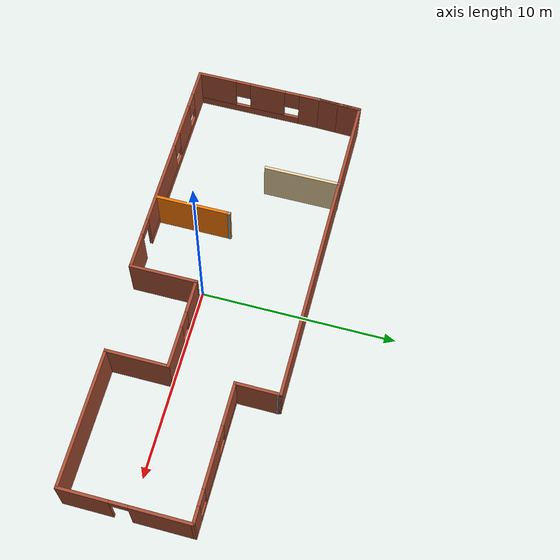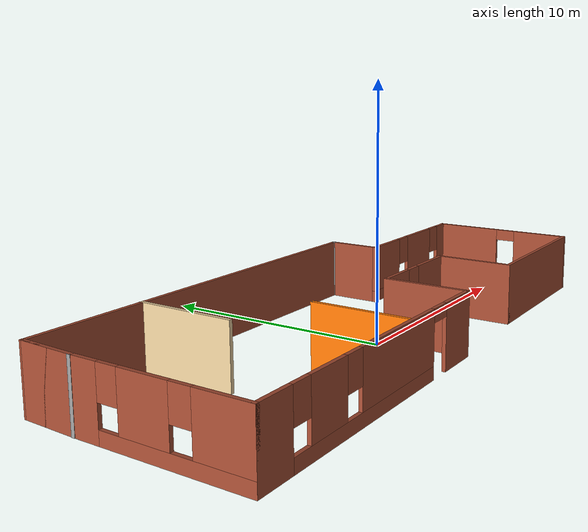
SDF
<?xml version='1.0'?>
<sdf version='1.6'>
  <model name='my_office'>
    <pose frame=''>0.229146 0.987784 0 0 -0 0</pose>
    <link name='Wall_0'>
      <collision name='Wall_0_Collision'>
        <geometry>
          <box>
            <size>0.16 0.15 2.5</size>
          </box>
        </geometry>
        <pose frame=''>0 0 1.25 0 -0 0</pose>
      </collision>
      <visual name='Wall_0_Visual'>
        <pose frame=''>0 0 1.25 0 -0 0</pose>
        <geometry>
          <box>
            <size>0.16 0.15 2.5</size>
          </box>
        </geometry>
        <material>
          <script>
            <uri>file://media/materials/scripts/gazebo.material</uri>
            <name>Gazebo/Grey</name>
          </script>
          <ambient>1 1 1 1</ambient>
        </material>
        <meta>
          <layer>0</layer>
        </meta>
      </visual>
      <pose frame=''>-11.775 2.1925 0 0 -0 0</pose>
    </link>
    <link name='Wall_1'>
      <pose frame=''>-11.77 -1.1075 0 0 0 -1.5708</pose>
      <visual name='Wall_1_Visual_0'>
        <pose frame=''>-2.79916 0 1.25 0 -0 0</pose>
        <geometry>
          <box>
            <size>1.15167 0.15 2.5</size>
          </box>
        </geometry>
        <material>
          <script>
            <uri>file://media/materials/scripts/gazebo.material</uri>
            <name>Gazebo/Bricks</name>
          </script>
          <ambient>1 1 1 1</ambient>
        </material>
        <meta>
          <layer>0</layer>
        </meta>
      </visual>
      <collision name='Wall_1_Collision_0'>
        <geometry>
          <box>
            <size>1.15167 0.15 2.5</size>
          </box>
        </geometry>
        <pose frame=''>-2.79916 0 1.25 0 -0 0</pose>
      </collision>
      <visual name='Wall_1_Visual_1'>
        <pose frame=''>0.575835 0 0.25 0 -0 0</pose>
        <geometry>
          <box>
            <size>5.59833 0.15 0.5</size>
          </box>
        </geometry>
        <material>
          <script>
            <uri>file://media/materials/scripts/gazebo.material</uri>
            <name>Gazebo/Bricks</name>
          </script>
          <ambient>1 1 1 1</ambient>
        </material>
        <meta>
          <layer>0</layer>
        </meta>
      </visual>
      <collision name='Wall_1_Collision_1'>
        <geometry>
          <box>
            <size>5.59833 0.15 0.5</size>
          </box>
        </geometry>
        <pose frame=''>0.575835 0 0.25 0 -0 0</pose>
      </collision>
      <visual name='Wall_1_Visual_2'>
        <pose frame=''>-0.469718 0 1.5 0 -0 0</pose>
        <geometry>
          <box>
            <size>1.90723 0.15 2</size>
          </box>
        </geometry>
        <material>
          <script>
            <uri>file://media/materials/scripts/gazebo.material</uri>
            <name>Gazebo/Bricks</name>
          </script>
          <ambient>1 1 1 1</ambient>
        </material>
        <meta>
          <layer>0</layer>
        </meta>
      </visual>
      <collision name='Wall_1_Collision_2'>
        <geometry>
          <box>
            <size>1.90723 0.15 2</size>
          </box>
        </geometry>
        <pose frame=''>-0.469718 0 1.5 0 -0 0</pose>
      </collision>
      <visual name='Wall_1_Visual_3'>
        <pose frame=''>2.32945 0 1.5 0 -0 0</pose>
        <geometry>
          <box>
            <size>2.0911 0.15 2</size>
          </box>
        </geometry>
        <material>
          <script>
            <uri>file://media/materials/scripts/gazebo.material</uri>
            <name>Gazebo/Bricks</name>
          </script>
          <ambient>1 1 1 1</ambient>
        </material>
        <meta>
          <layer>0</layer>
        </meta>
      </visual>
      <collision name='Wall_1_Collision_3'>
        <geometry>
          <box>
            <size>2.0911 0.15 2</size>
          </box>
        </geometry>
        <pose frame=''>2.32945 0 1.5 0 -0 0</pose>
      </collision>
      <visual name='Wall_1_Visual_4'>
        <pose frame=''>-1.82333 0 1.9 0 -0 0</pose>
        <geometry>
          <box>
            <size>0.8 0.15 1.2</size>
          </box>
        </geometry>
        <material>
          <script>
            <uri>file://media/materials/scripts/gazebo.material</uri>
            <name>Gazebo/Bricks</name>
          </script>
          <ambient>1 1 1 1</ambient>
        </material>
        <meta>
          <layer>0</layer>
        </meta>
      </visual>
      <collision name='Wall_1_Collision_4'>
        <geometry>
          <box>
            <size>0.8 0.15 1.2</size>
          </box>
        </geometry>
        <pose frame=''>-1.82333 0 1.9 0 -0 0</pose>
      </collision>
      <visual name='Wall_1_Visual_5'>
        <pose frame=''>0.883896 0 1.9 0 -0 0</pose>
        <geometry>
          <box>
            <size>0.8 0.15 1.2</size>
          </box>
        </geometry>
        <material>
          <script>
            <uri>file://media/materials/scripts/gazebo.material</uri>
            <name>Gazebo/Bricks</name>
          </script>
          <ambient>1 1 1 1</ambient>
        </material>
        <meta>
          <layer>0</layer>
        </meta>
      </visual>
      <collision name='Wall_1_Collision_5'>
        <geometry>
          <box>
            <size>0.8 0.15 1.2</size>
          </box>
        </geometry>
        <pose frame=''>0.883896 0 1.9 0 -0 0</pose>
      </collision>
    </link>
    <link name='Wall_11'>
      <collision name='Wall_11_Collision'>
        <geometry>
          <box>
            <size>0.25 0.15 2.5</size>
          </box>
        </geometry>
        <pose frame=''>0 0 1.25 0 -0 0</pose>
      </collision>
      <visual name='Wall_11_Visual'>
        <pose frame=''>0 0 1.25 0 -0 0</pose>
        <geometry>
          <box>
            <size>0.25 0.15 2.5</size>
          </box>
        </geometry>
        <material>
          <script>
            <uri>file://media/materials/scripts/gazebo.material</uri>
            <name>Gazebo/Grey</name>
          </script>
          <ambient>1 1 1 1</ambient>
        </material>
        <meta>
          <layer>0</layer>
        </meta>
      </visual>
      <pose frame=''>4.91706 4.34079 0 0 -0 1.8326</pose>
    </link>
    <link name='Wall_12'>
      <collision name='Wall_12_Collision'>
        <geometry>
          <box>
            <size>16.75 0.15 2.5</size>
          </box>
        </geometry>
        <pose frame=''>0 0 1.25 0 -0 0</pose>
      </collision>
      <visual name='Wall_12_Visual'>
        <pose frame=''>0 0 1.25 0 -0 0</pose>
        <geometry>
          <box>
            <size>16.75 0.15 2.5</size>
          </box>
        </geometry>
        <material>
          <script>
            <uri>file://media/materials/scripts/gazebo.material</uri>
            <name>Gazebo/Bricks</name>
          </script>
          <ambient>1 1 1 1</ambient>
        </material>
        <meta>
          <layer>0</layer>
        </meta>
      </visual>
      <pose frame=''>-3.39588 4.38909 0 0 -0 3.14159</pose>
    </link>
    <link name='Wall_13'>
      <collision name='Wall_13_Collision'>
        <geometry>
          <box>
            <size>2.34784 0.15 2.5</size>
          </box>
        </geometry>
        <pose frame=''>0 0 1.25 0 -0 0</pose>
      </collision>
      <visual name='Wall_13_Visual'>
        <pose frame=''>0 0 1.25 0 -0 0</pose>
        <geometry>
          <box>
            <size>2.34784 0.15 2.5</size>
          </box>
        </geometry>
        <material>
          <script>
            <uri>file://media/materials/scripts/gazebo.material</uri>
            <name>Gazebo/Bricks</name>
          </script>
          <ambient>1 1 1 1</ambient>
        </material>
        <meta>
          <layer>0</layer>
        </meta>
      </visual>
      <pose frame=''>-11.7329 3.2908 0 0 0 -1.60453</pose>
    </link>
    <link name='Wall_14'>
      <collision name='Wall_14_Collision'>
        <geometry>
          <box>
            <size>2.34784 0.15 2.5</size>
          </box>
        </geometry>
        <pose frame=''>0 0 1.25 0 -0 0</pose>
      </collision>
      <visual name='Wall_14_Visual'>
        <pose frame=''>0 0 1.25 0 -0 0</pose>
        <geometry>
          <box>
            <size>2.34784 0.15 2.5</size>
          </box>
        </geometry>
        <material>
          <script>
            <uri>file://media/materials/scripts/gazebo.material</uri>
            <name>Gazebo/Bricks</name>
          </script>
          <ambient>1 1 1 1</ambient>
        </material>
        <meta>
          <layer>0</layer>
        </meta>
      </visual>
      <pose frame=''>-11.7329 3.2908 0 0 -0 1.53707</pose>
    </link>
    <link name='Wall_16'>
      <collision name='Wall_16_Collision'>
        <geometry>
          <box>
            <size>0.16 0.15 2.5</size>
          </box>
        </geometry>
        <pose frame=''>0 0 1.25 0 -0 0</pose>
      </collision>
      <visual name='Wall_16_Visual'>
        <pose frame=''>0 0 1.25 0 -0 0</pose>
        <geometry>
          <box>
            <size>0.16 0.15 2.5</size>
          </box>
        </geometry>
        <material>
          <script>
            <uri>file://media/materials/scripts/gazebo.material</uri>
            <name>Gazebo/Grey</name>
          </script>
          <ambient>1 1 1 1</ambient>
        </material>
        <meta>
          <layer>0</layer>
        </meta>
      </visual>
      <pose frame=''>-6.9143 4.4075 0 0 -0 0</pose>
    </link>
    <link name='Wall_17'>
      <collision name='Wall_17_Collision'>
        <geometry>
          <box>
            <size>4 0.15 2.5</size>
          </box>
        </geometry>
        <pose frame=''>0 0 1.25 0 -0 0</pose>
      </collision>
      <visual name='Wall_17_Visual'>
        <pose frame=''>0 0 1.25 0 -0 0</pose>
        <geometry>
          <box>
            <size>4 0.15 2.5</size>
          </box>
        </geometry>
        <material>
          <script>
            <uri>file://media/materials/scripts/gazebo.material</uri>
            <name>Gazebo/Grey</name>
          </script>
          <ambient>0.921569 0.807843 0.615686 1</ambient>
        </material>
        <meta>
          <layer>0</layer>
        </meta>
      </visual>
      <pose frame=''>-6.9093 2.4825 0 0 0 -1.5708</pose>
    </link>
    <link name='Wall_19'>
      <collision name='Wall_19_Collision'>
        <geometry>
          <box>
            <size>4 0.15 2.5</size>
          </box>
        </geometry>
        <pose frame=''>0 0 1.25 0 -0 0</pose>
      </collision>
      <visual name='Wall_19_Visual'>
        <pose frame=''>0 0 1.25 0 -0 0</pose>
        <geometry>
          <box>
            <size>4 0.15 2.5</size>
          </box>
        </geometry>
        <material>
          <script>
            <uri>file://media/materials/scripts/gazebo.material</uri>
            <name>Gazebo/Grey</name>
          </script>
          <ambient>0.996078 0.47451 0.0196078 1</ambient>
        </material>
        <meta>
          <layer>0</layer>
        </meta>
      </visual>
      <pose frame=''>-3.78138 -2.46598 0 0 -0 1.5708</pose>
    </link>
    <link name='Wall_2'>
      <pose frame=''>-5.72 -4.4075 0 0 -0 0</pose>
      <visual name='Wall_2_Visual_0'>
        <pose frame=''>-5.36958 0 1.25 0 -0 0</pose>
        <geometry>
          <box>
            <size>1.51084 0.15 2.5</size>
          </box>
        </geometry>
        <material>
          <script>
            <uri>file://media/materials/scripts/gazebo.material</uri>
            <name>Gazebo/Bricks</name>
          </script>
          <ambient>1 1 1 1</ambient>
        </material>
        <meta>
          <layer>0</layer>
        </meta>
      </visual>
      <collision name='Wall_2_Collision_0'>
        <geometry>
          <box>
            <size>1.51084 0.15 2.5</size>
          </box>
        </geometry>
        <pose frame=''>-5.36958 0 1.25 0 -0 0</pose>
      </collision>
      <visual name='Wall_2_Visual_1'>
        <pose frame=''>5.17973 0 1.25 0 -0 0</pose>
        <geometry>
          <box>
            <size>1.89054 0.15 2.5</size>
          </box>
        </geometry>
        <material>
          <script>
            <uri>file://media/materials/scripts/gazebo.material</uri>
            <name>Gazebo/Bricks</name>
          </script>
          <ambient>1 1 1 1</ambient>
        </material>
        <meta>
          <layer>0</layer>
        </meta>
      </visual>
      <collision name='Wall_2_Collision_1'>
        <geometry>
          <box>
            <size>1.89054 0.15 2.5</size>
          </box>
        </geometry>
        <pose frame=''>5.17973 0 1.25 0 -0 0</pose>
      </collision>
      <visual name='Wall_2_Visual_2'>
        <pose frame=''>-0.639852 0 0.25 0 -0 0</pose>
        <geometry>
          <box>
            <size>7.94862 0.15 0.5</size>
          </box>
        </geometry>
        <material>
          <script>
            <uri>file://media/materials/scripts/gazebo.material</uri>
            <name>Gazebo/Bricks</name>
          </script>
          <ambient>1 1 1 1</ambient>
        </material>
        <meta>
          <layer>0</layer>
        </meta>
      </visual>
      <collision name='Wall_2_Collision_2'>
        <geometry>
          <box>
            <size>7.94862 0.15 0.5</size>
          </box>
        </geometry>
        <pose frame=''>-0.639852 0 0.25 0 -0 0</pose>
      </collision>
      <visual name='Wall_2_Visual_3'>
        <pose frame=''>-2.92208 0 1.5 0 -0 0</pose>
        <geometry>
          <box>
            <size>1.78417 0.15 2</size>
          </box>
        </geometry>
        <material>
          <script>
            <uri>file://media/materials/scripts/gazebo.material</uri>
            <name>Gazebo/Bricks</name>
          </script>
          <ambient>1 1 1 1</ambient>
        </material>
        <meta>
          <layer>0</layer>
        </meta>
      </visual>
      <collision name='Wall_2_Collision_3'>
        <geometry>
          <box>
            <size>1.78417 0.15 2</size>
          </box>
        </geometry>
        <pose frame=''>-2.92208 0 1.5 0 -0 0</pose>
      </collision>
      <visual name='Wall_2_Visual_4'>
        <pose frame=''>1.05223 0 1.5 0 -0 0</pose>
        <geometry>
          <box>
            <size>4.56445 0.15 2</size>
          </box>
        </geometry>
        <material>
          <script>
            <uri>file://media/materials/scripts/gazebo.material</uri>
            <name>Gazebo/Bricks</name>
          </script>
          <ambient>1 1 1 1</ambient>
        </material>
        <meta>
          <layer>0</layer>
        </meta>
      </visual>
      <collision name='Wall_2_Collision_4'>
        <geometry>
          <box>
            <size>4.56445 0.15 2</size>
          </box>
        </geometry>
        <pose frame=''>1.05223 0 1.5 0 -0 0</pose>
      </collision>
      <visual name='Wall_2_Visual_5'>
        <pose frame=''>-4.21416 0 1.9 0 -0 0</pose>
        <geometry>
          <box>
            <size>0.8 0.15 1.2</size>
          </box>
        </geometry>
        <material>
          <script>
            <uri>file://media/materials/scripts/gazebo.material</uri>
            <name>Gazebo/Bricks</name>
          </script>
          <ambient>1 1 1 1</ambient>
        </material>
        <meta>
          <layer>0</layer>
        </meta>
      </visual>
      <collision name='Wall_2_Collision_5'>
        <geometry>
          <box>
            <size>0.8 0.15 1.2</size>
          </box>
        </geometry>
        <pose frame=''>-4.21416 0 1.9 0 -0 0</pose>
      </collision>
      <visual name='Wall_2_Visual_6'>
        <pose frame=''>-1.62999 0 1.9 0 -0 0</pose>
        <geometry>
          <box>
            <size>0.8 0.15 1.2</size>
          </box>
        </geometry>
        <material>
          <script>
            <uri>file://media/materials/scripts/gazebo.material</uri>
            <name>Gazebo/Bricks</name>
          </script>
          <ambient>1 1 1 1</ambient>
        </material>
        <meta>
          <layer>0</layer>
        </meta>
      </visual>
      <collision name='Wall_2_Collision_6'>
        <geometry>
          <box>
            <size>0.8 0.15 1.2</size>
          </box>
        </geometry>
        <pose frame=''>-1.62999 0 1.9 0 -0 0</pose>
      </collision>
      <visual name='Wall_2_Visual_7'>
        <pose frame=''>3.78446 0 2.25 0 -0 0</pose>
        <geometry>
          <box>
            <size>0.9 0.15 0.5</size>
          </box>
        </geometry>
        <material>
          <script>
            <uri>file://media/materials/scripts/gazebo.material</uri>
            <name>Gazebo/Bricks</name>
          </script>
          <ambient>1 1 1 1</ambient>
        </material>
        <meta>
          <layer>0</layer>
        </meta>
      </visual>
      <collision name='Wall_2_Collision_7'>
        <geometry>
          <box>
            <size>0.9 0.15 0.5</size>
          </box>
        </geometry>
        <pose frame=''>3.78446 0 2.25 0 -0 0</pose>
      </collision>
    </link>
    <link name='Wall_20'>
      <collision name='Wall_20_Collision'>
        <geometry>
          <box>
            <size>0.16 0.15 2.5</size>
          </box>
        </geometry>
        <pose frame=''>0 0 1.25 0 -0 0</pose>
      </collision>
      <visual name='Wall_20_Visual'>
        <pose frame=''>0 0 1.25 0 -0 0</pose>
        <geometry>
          <box>
            <size>0.16 0.15 2.5</size>
          </box>
        </geometry>
        <material>
          <script>
            <uri>file://media/materials/scripts/gazebo.material</uri>
            <name>Gazebo/Grey</name>
          </script>
          <ambient>1 1 1 1</ambient>
        </material>
        <meta>
          <layer>0</layer>
        </meta>
      </visual>
      <pose frame=''>-3.77638 -0.540985 0 0 -0 0</pose>
    </link>
    <link name='Wall_3'>
      <collision name='Wall_3_Collision'>
        <geometry>
          <box>
            <size>3.5 0.15 2.5</size>
          </box>
        </geometry>
        <pose frame=''>0 0 1.25 0 -0 0</pose>
      </collision>
      <visual name='Wall_3_Visual'>
        <pose frame=''>0 0 1.25 0 -0 0</pose>
        <geometry>
          <box>
            <size>3.5 0.15 2.5</size>
          </box>
        </geometry>
        <material>
          <script>
            <uri>file://media/materials/scripts/gazebo.material</uri>
            <name>Gazebo/Bricks</name>
          </script>
          <ambient>1 1 1 1</ambient>
        </material>
        <meta>
          <layer>0</layer>
        </meta>
      </visual>
      <pose frame=''>0.33 -2.7325 0 0 -0 1.5708</pose>
    </link>
    <link name='Wall_4'>
      <pose frame=''>2.63 -1.0575 0 0 -0 0</pose>
      <visual name='Wall_4_Visual_0'>
        <pose frame=''>-1.48603 0 1.25 0 -0 0</pose>
        <geometry>
          <box>
            <size>1.77794 0.15 2.5</size>
          </box>
        </geometry>
        <material>
          <script>
            <uri>file://media/materials/scripts/gazebo.material</uri>
            <name>Gazebo/Bricks</name>
          </script>
          <ambient>1 1 1 1</ambient>
        </material>
        <meta>
          <layer>0</layer>
        </meta>
      </visual>
      <collision name='Wall_4_Collision_0'>
        <geometry>
          <box>
            <size>1.77794 0.15 2.5</size>
          </box>
        </geometry>
        <pose frame=''>-1.48603 0 1.25 0 -0 0</pose>
      </collision>
      <visual name='Wall_4_Visual_1'>
        <pose frame=''>0.88897 0 0.25 0 -0 0</pose>
        <geometry>
          <box>
            <size>2.97206 0.15 0.5</size>
          </box>
        </geometry>
        <material>
          <script>
            <uri>file://media/materials/scripts/gazebo.material</uri>
            <name>Gazebo/Bricks</name>
          </script>
          <ambient>1 1 1 1</ambient>
        </material>
        <meta>
          <layer>0</layer>
        </meta>
      </visual>
      <collision name='Wall_4_Collision_1'>
        <geometry>
          <box>
            <size>2.97206 0.15 0.5</size>
          </box>
        </geometry>
        <pose frame=''>0.88897 0 0.25 0 -0 0</pose>
      </collision>
      <visual name='Wall_4_Visual_2'>
        <pose frame=''>1.28897 0 1.5 0 -0 0</pose>
        <geometry>
          <box>
            <size>2.17206 0.15 2</size>
          </box>
        </geometry>
        <material>
          <script>
            <uri>file://media/materials/scripts/gazebo.material</uri>
            <name>Gazebo/Bricks</name>
          </script>
          <ambient>1 1 1 1</ambient>
        </material>
        <meta>
          <layer>0</layer>
        </meta>
      </visual>
      <collision name='Wall_4_Collision_2'>
        <geometry>
          <box>
            <size>2.17206 0.15 2</size>
          </box>
        </geometry>
        <pose frame=''>1.28897 0 1.5 0 -0 0</pose>
      </collision>
      <visual name='Wall_4_Visual_3'>
        <pose frame=''>-0.197061 0 1.9 0 -0 0</pose>
        <geometry>
          <box>
            <size>0.8 0.15 1.2</size>
          </box>
        </geometry>
        <material>
          <script>
            <uri>file://media/materials/scripts/gazebo.material</uri>
            <name>Gazebo/Bricks</name>
          </script>
          <ambient>1 1 1 1</ambient>
        </material>
        <meta>
          <layer>0</layer>
        </meta>
      </visual>
      <collision name='Wall_4_Collision_3'>
        <geometry>
          <box>
            <size>0.8 0.15 1.2</size>
          </box>
        </geometry>
        <pose frame=''>-0.197061 0 1.9 0 -0 0</pose>
      </collision>
    </link>
    <link name='Wall_5'>
      <collision name='Wall_5_Collision'>
        <geometry>
          <box>
            <size>3.25 0.15 2.5</size>
          </box>
        </geometry>
        <pose frame=''>0 0 1.25 0 -0 0</pose>
      </collision>
      <visual name='Wall_5_Visual'>
        <pose frame=''>0 0 1.25 0 -0 0</pose>
        <geometry>
          <box>
            <size>3.25 0.15 2.5</size>
          </box>
        </geometry>
        <material>
          <script>
            <uri>file://media/materials/scripts/gazebo.material</uri>
            <name>Gazebo/Bricks</name>
          </script>
          <ambient>1 1 1 1</ambient>
        </material>
        <meta>
          <layer>0</layer>
        </meta>
      </visual>
      <pose frame=''>4.93 -2.6075 0 0 0 -1.5708</pose>
    </link>
    <link name='Wall_6'>
      <collision name='Wall_6_Collision'>
        <geometry>
          <box>
            <size>7 0.15 2.5</size>
          </box>
        </geometry>
        <pose frame=''>0 0 1.25 0 -0 0</pose>
      </collision>
      <visual name='Wall_6_Visual'>
        <pose frame=''>0 0 1.25 0 -0 0</pose>
        <geometry>
          <box>
            <size>7 0.15 2.5</size>
          </box>
        </geometry>
        <material>
          <script>
            <uri>file://media/materials/scripts/gazebo.material</uri>
            <name>Gazebo/Bricks</name>
          </script>
          <ambient>1 1 1 1</ambient>
        </material>
        <meta>
          <layer>0</layer>
        </meta>
      </visual>
      <pose frame=''>8.355 -4.1575 0 0 -0 0</pose>
    </link>
    <link name='Wall_7'>
      <pose frame=''>11.78 -0.982502 0 0 -0 1.5708</pose>
      <visual name='Wall_7_Visual_0'>
        <pose frame=''>-1.98528 0 1.25 0 -0 0</pose>
        <geometry>
          <box>
            <size>2.52944 0.15 2.5</size>
          </box>
        </geometry>
        <material>
          <script>
            <uri>file://media/materials/scripts/gazebo.material</uri>
            <name>Gazebo/Bricks</name>
          </script>
          <ambient>1 1 1 1</ambient>
        </material>
        <meta>
          <layer>0</layer>
        </meta>
      </visual>
      <collision name='Wall_7_Collision_0'>
        <geometry>
          <box>
            <size>2.52944 0.15 2.5</size>
          </box>
        </geometry>
        <pose frame=''>-1.98528 0 1.25 0 -0 0</pose>
      </collision>
      <visual name='Wall_7_Visual_1'>
        <pose frame=''>1.71472 0 1.25 0 -0 0</pose>
        <geometry>
          <box>
            <size>3.07056 0.15 2.5</size>
          </box>
        </geometry>
        <material>
          <script>
            <uri>file://media/materials/scripts/gazebo.material</uri>
            <name>Gazebo/Bricks</name>
          </script>
          <ambient>1 1 1 1</ambient>
        </material>
        <meta>
          <layer>0</layer>
        </meta>
      </visual>
      <collision name='Wall_7_Collision_1'>
        <geometry>
          <box>
            <size>3.07056 0.15 2.5</size>
          </box>
        </geometry>
        <pose frame=''>1.71472 0 1.25 0 -0 0</pose>
      </collision>
      <visual name='Wall_7_Visual_2'>
        <pose frame=''>-0.270561 0 2.25 0 -0 0</pose>
        <geometry>
          <box>
            <size>0.9 0.15 0.5</size>
          </box>
        </geometry>
        <material>
          <script>
            <uri>file://media/materials/scripts/gazebo.material</uri>
            <name>Gazebo/Bricks</name>
          </script>
          <ambient>1 1 1 1</ambient>
        </material>
        <meta>
          <layer>0</layer>
        </meta>
      </visual>
      <collision name='Wall_7_Collision_2'>
        <geometry>
          <box>
            <size>0.9 0.15 0.5</size>
          </box>
        </geometry>
        <pose frame=''>-0.270561 0 2.25 0 -0 0</pose>
      </collision>
    </link>
    <link name='Wall_8'>
      <pose frame=''>8.355 2.1925 0 0 -0 3.14159</pose>
      <visual name='Wall_8_Visual_0'>
        <pose frame=''>-3.04981 0 1.25 0 -0 0</pose>
        <geometry>
          <box>
            <size>0.900381 0.15 2.5</size>
          </box>
        </geometry>
        <material>
          <script>
            <uri>file://media/materials/scripts/gazebo.material</uri>
            <name>Gazebo/Bricks</name>
          </script>
          <ambient>1 1 1 1</ambient>
        </material>
        <meta>
          <layer>0</layer>
        </meta>
      </visual>
      <collision name='Wall_8_Collision_0'>
        <geometry>
          <box>
            <size>0.900381 0.15 2.5</size>
          </box>
        </geometry>
        <pose frame=''>-3.04981 0 1.25 0 -0 0</pose>
      </collision>
      <visual name='Wall_8_Visual_1'>
        <pose frame=''>0.45019 0 0.25 0 -0 0</pose>
        <geometry>
          <box>
            <size>6.09962 0.15 0.5</size>
          </box>
        </geometry>
        <material>
          <script>
            <uri>file://media/materials/scripts/gazebo.material</uri>
            <name>Gazebo/Bricks</name>
          </script>
          <ambient>1 1 1 1</ambient>
        </material>
        <meta>
          <layer>0</layer>
        </meta>
      </visual>
      <collision name='Wall_8_Collision_1'>
        <geometry>
          <box>
            <size>6.09962 0.15 0.5</size>
          </box>
        </geometry>
        <pose frame=''>0.45019 0 0.25 0 -0 0</pose>
      </collision>
      <visual name='Wall_8_Visual_2'>
        <pose frame=''>-0.661422 0 1.5 0 -0 0</pose>
        <geometry>
          <box>
            <size>2.27639 0.15 2</size>
          </box>
        </geometry>
        <material>
          <script>
            <uri>file://media/materials/scripts/gazebo.material</uri>
            <name>Gazebo/Bricks</name>
          </script>
          <ambient>1 1 1 1</ambient>
        </material>
        <meta>
          <layer>0</layer>
        </meta>
      </visual>
      <collision name='Wall_8_Collision_2'>
        <geometry>
          <box>
            <size>2.27639 0.15 2</size>
          </box>
        </geometry>
        <pose frame=''>-0.661422 0 1.5 0 -0 0</pose>
      </collision>
      <visual name='Wall_8_Visual_3'>
        <pose frame=''>2.38839 0 1.5 0 -0 0</pose>
        <geometry>
          <box>
            <size>2.22323 0.15 2</size>
          </box>
        </geometry>
        <material>
          <script>
            <uri>file://media/materials/scripts/gazebo.material</uri>
            <name>Gazebo/Bricks</name>
          </script>
          <ambient>1 1 1 1</ambient>
        </material>
        <meta>
          <layer>0</layer>
        </meta>
      </visual>
      <collision name='Wall_8_Collision_3'>
        <geometry>
          <box>
            <size>2.22323 0.15 2</size>
          </box>
        </geometry>
        <pose frame=''>2.38839 0 1.5 0 -0 0</pose>
      </collision>
      <visual name='Wall_8_Visual_4'>
        <pose frame=''>-2.19962 0 1.9 0 -0 0</pose>
        <geometry>
          <box>
            <size>0.8 0.15 1.2</size>
          </box>
        </geometry>
        <material>
          <script>
            <uri>file://media/materials/scripts/gazebo.material</uri>
            <name>Gazebo/Bricks</name>
          </script>
          <ambient>1 1 1 1</ambient>
        </material>
        <meta>
          <layer>0</layer>
        </meta>
      </visual>
      <collision name='Wall_8_Collision_4'>
        <geometry>
          <box>
            <size>0.8 0.15 1.2</size>
          </box>
        </geometry>
        <pose frame=''>-2.19962 0 1.9 0 -0 0</pose>
      </collision>
      <visual name='Wall_8_Visual_5'>
        <pose frame=''>0.876774 0 1.9 0 -0 0</pose>
        <geometry>
          <box>
            <size>0.8 0.15 1.2</size>
          </box>
        </geometry>
        <material>
          <script>
            <uri>file://media/materials/scripts/gazebo.material</uri>
            <name>Gazebo/Bricks</name>
          </script>
          <ambient>1 1 1 1</ambient>
        </material>
        <meta>
          <layer>0</layer>
        </meta>
      </visual>
      <collision name='Wall_8_Collision_5'>
        <geometry>
          <box>
            <size>0.8 0.15 1.2</size>
          </box>
        </geometry>
        <pose frame=''>0.876774 0 1.9 0 -0 0</pose>
      </collision>
    </link>
    <link name='Wall_9'>
      <collision name='Wall_9_Collision'>
        <geometry>
          <box>
            <size>2.25 0.15 2.5</size>
          </box>
        </geometry>
        <pose frame=''>0 0 1.25 0 -0 0</pose>
      </collision>
      <visual name='Wall_9_Visual'>
        <pose frame=''>0 0 1.25 0 -0 0</pose>
        <geometry>
          <box>
            <size>2.25 0.15 2.5</size>
          </box>
        </geometry>
        <material>
          <script>
            <uri>file://media/materials/scripts/gazebo.material</uri>
            <name>Gazebo/Bricks</name>
          </script>
          <ambient>1 1 1 1</ambient>
        </material>
        <meta>
          <layer>0</layer>
        </meta>
      </visual>
      <pose frame=''>4.93 3.2425 0 0 -0 1.5708</pose>
    </link>
    <static>1</static>
  </model>
</sdf>
